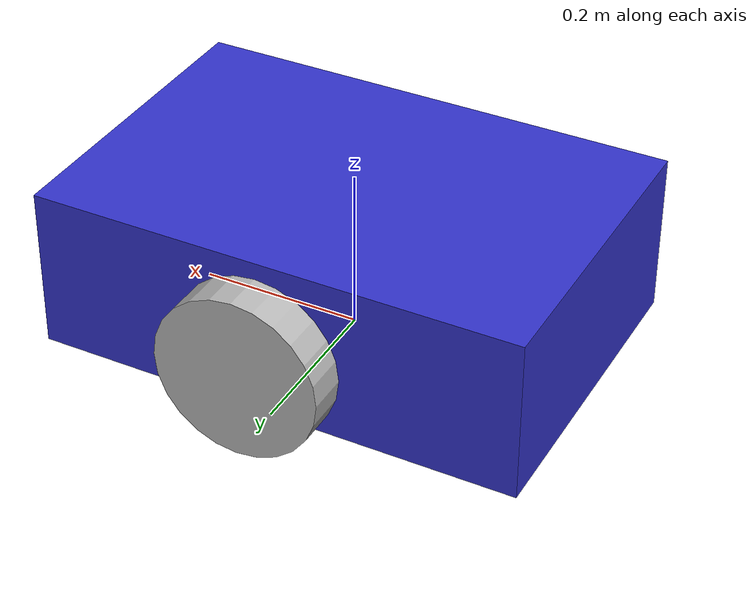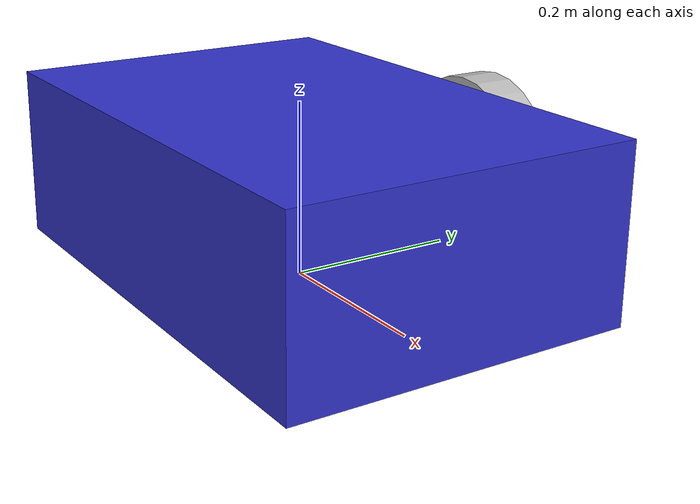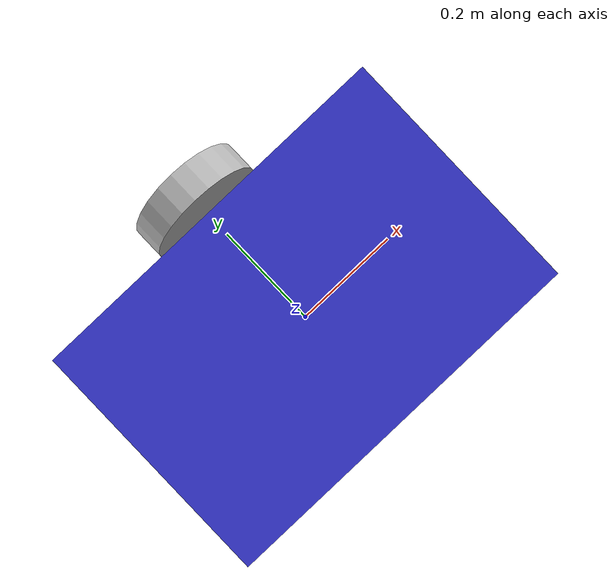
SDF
<?xml version="1.0" ?>
<sdf version="1.9">
  <world name="robot_world">
    <physics name="default_physics" default="0" type="ode">
      <gravity>0 0 -9.8066</gravity>
      <ode>
        <solver>
          <type>quick</type>
          <iters>150</iters>
        </solver>
      </ode>
    </physics>

    <model name="mobile_robot">
      <pose>0 0 0.1 0 0 0</pose>

      <link name="base_link">
        <inertial>
          <mass>5.0</mass>
          <inertia>
            <ixx>0.1</ixx>
            <ixy>0.0</ixy>
            <ixz>0.0</ixz>
            <iyy>0.1</iyy>
            <iyz>0.0</iyz>
            <izz>0.1</izz>
          </inertia>
        </inertial>

        <visual name="base_visual">
          <geometry>
            <box>
              <size>0.6 0.4 0.2</size>
            </box>
          </geometry>
          <material>
            <ambient>0.2 0.2 0.8 1</ambient>
            <diffuse>0.2 0.2 0.8 1</diffuse>
          </material>
        </visual>

        <collision name="base_collision">
          <geometry>
            <box>
              <size>0.6 0.4 0.2</size>
            </box>
          </geometry>
        </collision>

        <sensor name="lidar" type="ray">
          <pose>0 0 0.1 0 0 0</pose>
          <ray>
            <scan>
              <horizontal>
                <samples>640</samples>
                <resolution>1</resolution>
                <min_angle>-1.57</min_angle>
                <max_angle>1.57</max_angle>
              </horizontal>
            </scan>
            <range>
              <min>0.1</min>
              <max>10.0</max>
              <resolution>0.01</resolution>
            </range>
          </ray>
        </sensor>
      </link>

      <link name="left_wheel">
        <pose>0 0.25 0 1.57 0 0</pose>
        <inertial>
          <mass>1.0</mass>
          <inertia>
            <ixx>0.01</ixx>
            <ixy>0.0</ixy>
            <ixz>0.0</ixz>
            <iyy>0.01</iyy>
            <iyz>0.0</iyz>
            <izz>0.01</izz>
          </inertia>
        </inertial>

        <visual name="wheel_visual">
          <geometry>
            <cylinder>
              <radius>0.1</radius>
              <length>0.05</length>
            </cylinder>
          </geometry>
        </visual>

        <collision name="wheel_collision">
          <geometry>
            <cylinder>
              <radius>0.1</radius>
              <length>0.05</length>
            </cylinder>
          </geometry>
        </collision>
      </link>

      <joint name="left_wheel_joint" type="continuous">
        <parent>base_link</parent>
        <child>left_wheel</child>
        <axis>
          <xyz>0 1 0</xyz>
        </axis>
      </joint>
    </model>
  </world>
</sdf>
